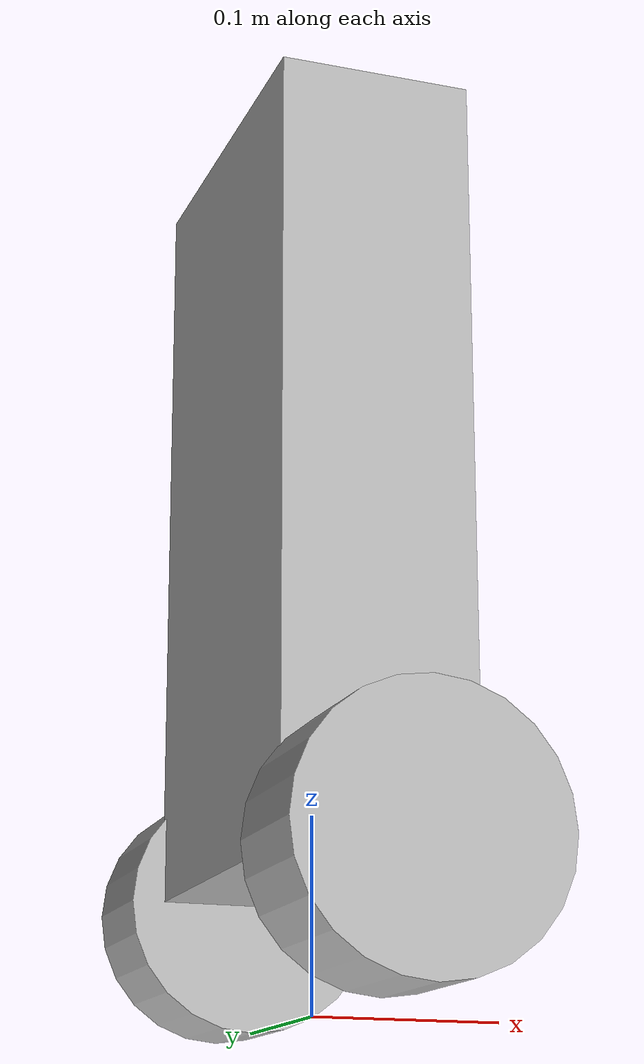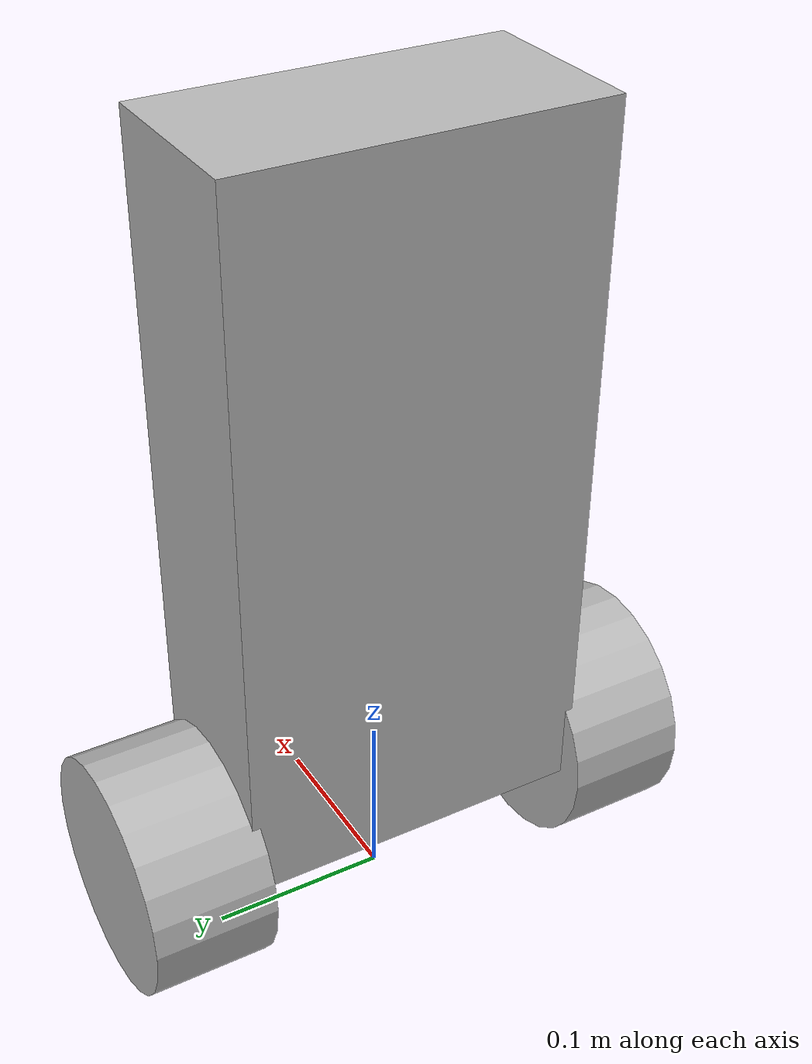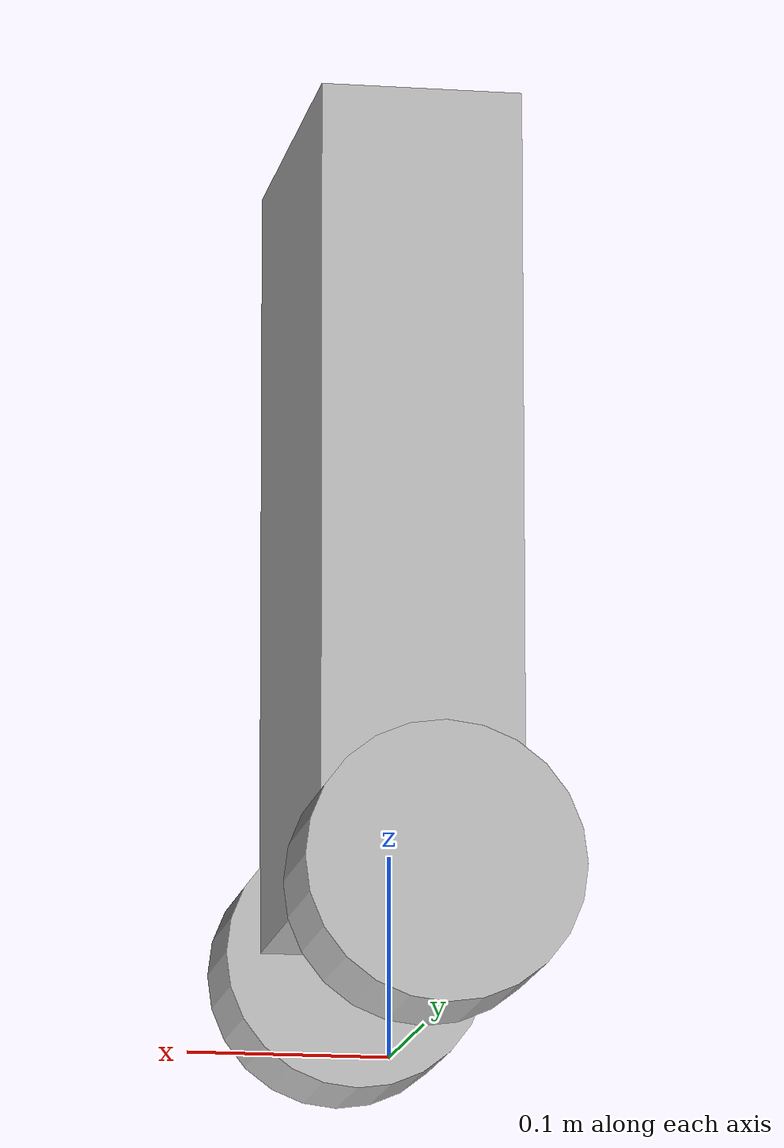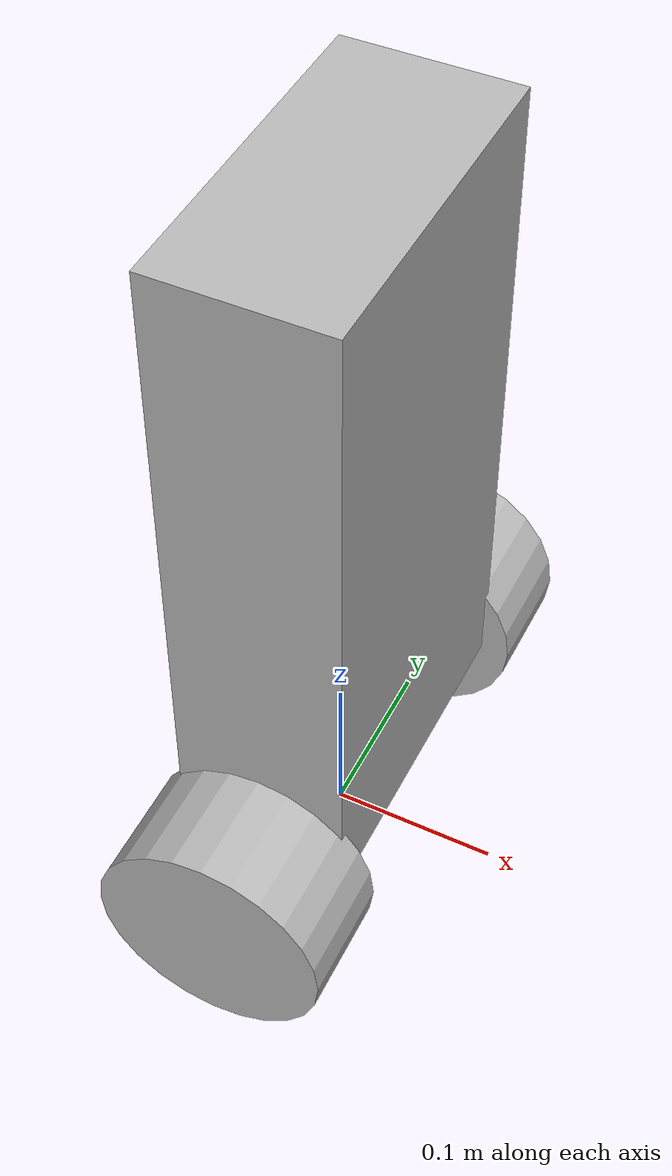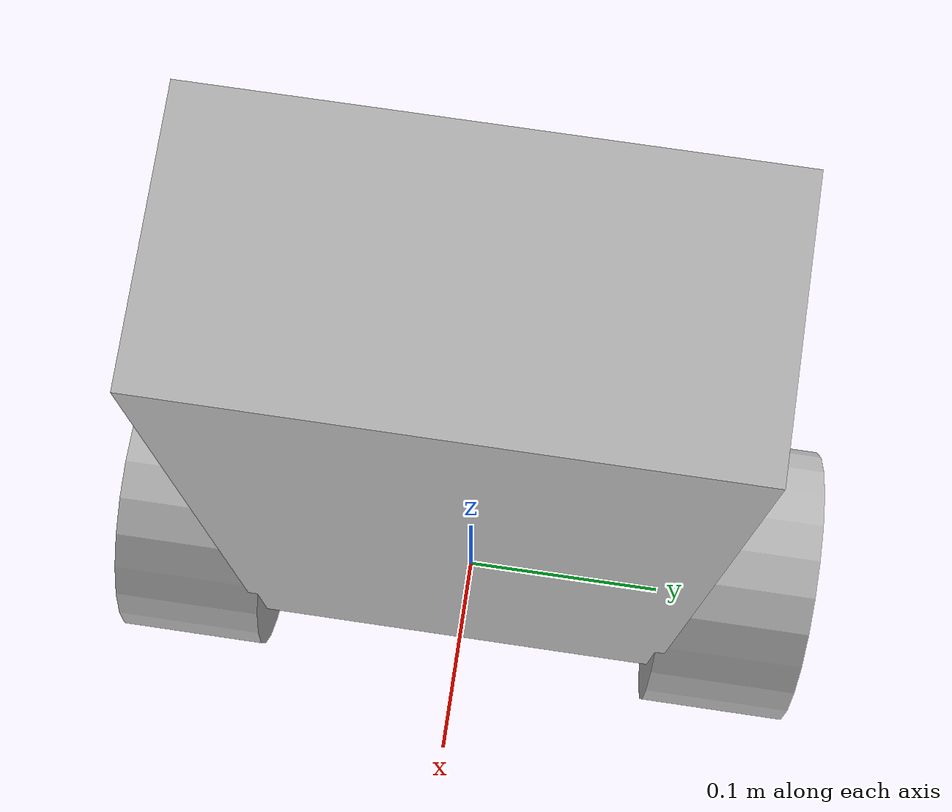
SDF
<?xml version='1.0'?>
<sdf version='1.4'>
  <model name="my_robot">
    <static>false</static>
    <link name='chassis'>
              <pose>0 0 .2675 0 0 0</pose>

              <collision name='collision'>
                <geometry>
                  <box>
                    <size>.1 .2 .4</size>
                  </box>
                </geometry>
              </collision>

              <visual name='visual'>
                <geometry>
                  <box>
                    <size>.1 .2 .4</size>
                  </box>
                </geometry>
              </visual>
    </link>

    <link name="left_wheel">
        <pose>0 0.13 0.0675 0 1.5707 1.5707</pose>
        <collision name="collision">
          <geometry>
            <cylinder>
              <radius>.0675</radius>
              <length>.069</length>
            </cylinder>
          </geometry>
        </collision>
        <visual name="visual">
          <geometry>
            <cylinder>
              <radius>.0675</radius>
              <length>.069</length>
            </cylinder>
          </geometry>
        </visual>
      </link>

    <link name="right_wheel">
        <pose>0 -0.13 0.0675 0 1.5707 1.5707</pose>
        <collision name="collision">
          <geometry>
            <cylinder>
              <radius>.0675</radius>
              <length>.069</length>
            </cylinder>
          </geometry>
        </collision>
        <visual name="visual">
          <geometry>
            <cylinder>
              <radius>.0675</radius>
              <length>.069</length>
            </cylinder>
          </geometry>
        </visual>
      </link>

      <joint type="revolute" name="left_wheel_hinge">
        <pose>0 0 -0.03 0 0 0</pose>
        <child>left_wheel</child>
        <parent>chassis</parent>
        <axis>
          <xyz>0 1 0</xyz>
        </axis>
      </joint>

      <joint type="revolute" name="right_wheel_hinge">
        <pose>0 0 0.03 0 0 0</pose>
        <child>right_wheel</child>
        <parent>chassis</parent>
        <axis>
          <xyz>0 1 0</xyz>
        </axis>
      </joint>

  </model>
</sdf>
